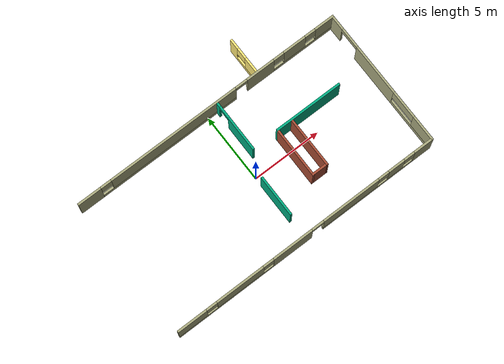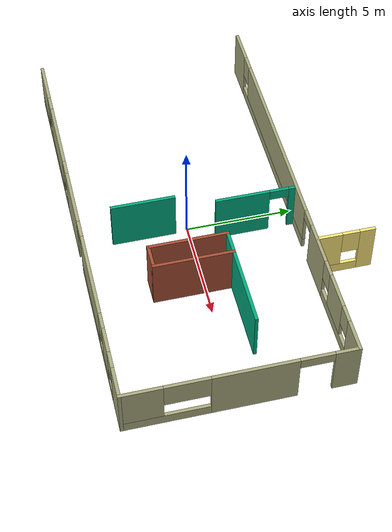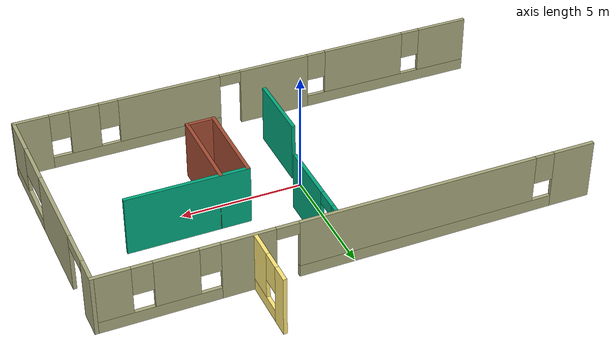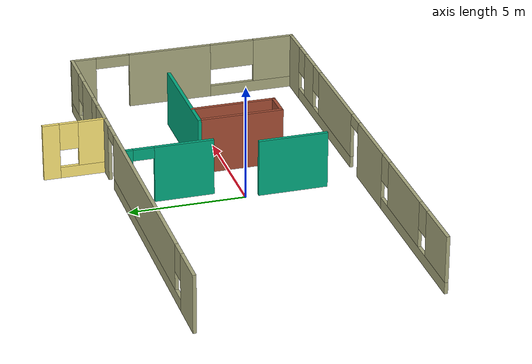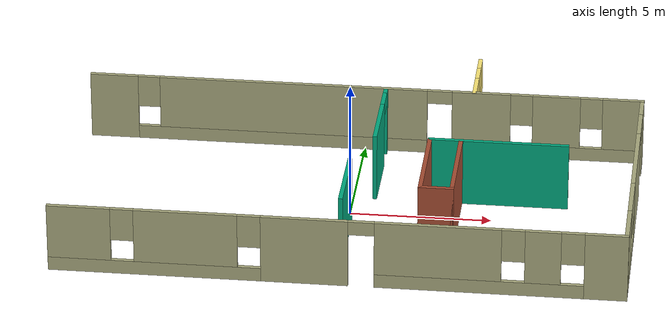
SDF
<sdf version="1.6">
 <model name="MyHouse">
  <pose>0 1.26463 0 0 -0 0</pose>
  <link name="Wall_16">
   <pose>0 3.73537 0 0 -0 0</pose>
   <visual name="Wall_16_Visual_0">
    <pose>-9.20037 0 1.25 0 -0 0</pose>
    <geometry><box><size>1.74927 0.15 2.5</size></box></geometry>
    <material>
     <script><uri>file://media/materials/scripts/gazebo.material</uri><name>Gazebo/Grey</name></script>
     <ambient>0.666667 0.666667 0.498039 1</ambient>
    </material>
    <meta><layer>0</layer></meta>
   </visual>
   <collision name="Wall_16_Collision_0">
    <geometry><box><size>1.74927 0.15 2.5</size></box></geometry>
    <pose>-9.20037 0 1.25 0 -0 0</pose>
   </collision>
   <visual name="Wall_16_Visual_1">
    <pose>4.20315 0 1.25 0 -0 0</pose>
    <geometry><box><size>2.12003 0.15 2.5</size></box></geometry>
    <material>
     <script><uri>file://media/materials/scripts/gazebo.material</uri><name>Gazebo/Grey</name></script>
     <ambient>0.666667 0.666667 0.498039 1</ambient>
    </material>
    <meta><layer>0</layer></meta>
   </visual>
   <collision name="Wall_16_Collision_1">
    <geometry><box><size>2.12003 0.15 2.5</size></box></geometry>
    <pose>4.20315 0 1.25 0 -0 0</pose>
   </collision>
   <visual name="Wall_16_Visual_2">
    <pose>-3.0413 0 0.25 0 -0 0</pose>
    <geometry><box><size>10.5689 0.15 0.5</size></box></geometry>
    <material>
     <script><uri>file://media/materials/scripts/gazebo.material</uri><name>Gazebo/Grey</name></script>
     <ambient>0.666667 0.666667 0.498039 1</ambient>
    </material>
    <meta><layer>0</layer></meta>
   </visual>
   <collision name="Wall_16_Collision_2">
    <geometry><box><size>10.5689 0.15 0.5</size></box></geometry>
    <pose>-3.0413 0 0.25 0 -0 0</pose>
   </collision>
   <visual name="Wall_16_Visual_3">
    <pose>7.66908 0 0.25 0 -0 0</pose>
    <geometry><box><size>4.81184 0.15 0.5</size></box></geometry>
    <material>
     <script><uri>file://media/materials/scripts/gazebo.material</uri><name>Gazebo/Grey</name></script>
     <ambient>0.666667 0.666667 0.498039 1</ambient>
    </material>
    <meta><layer>0</layer></meta>
   </visual>
   <collision name="Wall_16_Collision_3">
    <geometry><box><size>4.81184 0.15 0.5</size></box></geometry>
    <pose>7.66908 0 0.25 0 -0 0</pose>
   </collision>
   <visual name="Wall_16_Visual_4">
    <pose>-2.6413 0 1.5 0 -0 0</pose>
    <geometry><box><size>9.76886 0.15 2</size></box></geometry>
    <material>
     <script><uri>file://media/materials/scripts/gazebo.material</uri><name>Gazebo/Grey</name></script>
     <ambient>0.666667 0.666667 0.498039 1</ambient>
    </material>
    <meta><layer>0</layer></meta>
   </visual>
   <collision name="Wall_16_Collision_4">
    <geometry><box><size>9.76886 0.15 2</size></box></geometry>
    <pose>-2.6413 0 1.5 0 -0 0</pose>
   </collision>
   <visual name="Wall_16_Visual_5">
    <pose>-2.6413 0 1.5 0 -0 0</pose>
    <geometry><box><size>9.76886 0.15 2</size></box></geometry>
    <material>
     <script><uri>file://media/materials/scripts/gazebo.material</uri><name>Gazebo/Grey</name></script>
     <ambient>0.666667 0.666667 0.498039 1</ambient>
    </material>
    <meta><layer>0</layer></meta>
   </visual>
   <collision name="Wall_16_Collision_5">
    <geometry><box><size>9.76886 0.15 2</size></box></geometry>
    <pose>-2.6413 0 1.5 0 -0 0</pose>
   </collision>
   <visual name="Wall_16_Visual_6">
    <pose>6.9244 0 1.5 0 -0 0</pose>
    <geometry><box><size>1.72249 0.15 2</size></box></geometry>
    <material>
     <script><uri>file://media/materials/scripts/gazebo.material</uri><name>Gazebo/Grey</name></script>
     <ambient>0.666667 0.666667 0.498039 1</ambient>
    </material>
    <meta><layer>0</layer></meta>
   </visual>
   <collision name="Wall_16_Collision_6">
    <geometry><box><size>1.72249 0.15 2</size></box></geometry>
    <pose>6.9244 0 1.5 0 -0 0</pose>
   </collision>
   <visual name="Wall_16_Visual_7">
    <pose>9.33032 0 1.5 0 -0 0</pose>
    <geometry><box><size>1.48935 0.15 2</size></box></geometry>
    <material>
     <script><uri>file://media/materials/scripts/gazebo.material</uri><name>Gazebo/Grey</name></script>
     <ambient>0.666667 0.666667 0.498039 1</ambient>
    </material>
    <meta><layer>0</layer></meta>
   </visual>
   <collision name="Wall_16_Collision_7">
    <geometry><box><size>1.48935 0.15 2</size></box></geometry>
    <pose>9.33032 0 1.5 0 -0 0</pose>
   </collision>
   <visual name="Wall_16_Visual_8">
    <pose>-7.92574 0 1.9 0 -0 0</pose>
    <geometry><box><size>0.8 0.15 1.2</size></box></geometry>
    <material>
     <script><uri>file://media/materials/scripts/gazebo.material</uri><name>Gazebo/Grey</name></script>
     <ambient>0.666667 0.666667 0.498039 1</ambient>
    </material>
    <meta><layer>0</layer></meta>
   </visual>
   <collision name="Wall_16_Collision_8">
    <geometry><box><size>0.8 0.15 1.2</size></box></geometry>
    <pose>-7.92574 0 1.9 0 -0 0</pose>
   </collision>
   <visual name="Wall_16_Visual_9">
    <pose>5.66316 0 1.9 0 -0 0</pose>
    <geometry><box><size>0.8 0.15 1.2</size></box></geometry>
    <material>
     <script><uri>file://media/materials/scripts/gazebo.material</uri><name>Gazebo/Grey</name></script>
     <ambient>0.666667 0.666667 0.498039 1</ambient>
    </material>
    <meta><layer>0</layer></meta>
   </visual>
   <collision name="Wall_16_Collision_9">
    <geometry><box><size>0.8 0.15 1.2</size></box></geometry>
    <pose>5.66316 0 1.9 0 -0 0</pose>
   </collision>
   <visual name="Wall_16_Visual_10">
    <pose>8.18565 0 1.9 0 -0 0</pose>
    <geometry><box><size>0.8 0.15 1.2</size></box></geometry>
    <material>
     <script><uri>file://media/materials/scripts/gazebo.material</uri><name>Gazebo/Grey</name></script>
     <ambient>0.666667 0.666667 0.498039 1</ambient>
    </material>
    <meta><layer>0</layer></meta>
   </visual>
   <collision name="Wall_16_Collision_10">
    <geometry><box><size>0.8 0.15 1.2</size></box></geometry>
    <pose>8.18565 0 1.9 0 -0 0</pose>
   </collision>
   <visual name="Wall_16_Visual_11">
    <pose>2.69313 0 2.25 0 -0 0</pose>
    <geometry><box><size>0.9 0.15 0.5</size></box></geometry>
    <material>
     <script><uri>file://media/materials/scripts/gazebo.material</uri><name>Gazebo/Grey</name></script>
     <ambient>0.666667 0.666667 0.498039 1</ambient>
    </material>
    <meta><layer>0</layer></meta>
   </visual>
   <collision name="Wall_16_Collision_11">
    <geometry><box><size>0.9 0.15 0.5</size></box></geometry>
    <pose>2.69313 0 2.25 0 -0 0</pose>
   </collision>
   <visual name="Wall_16_Visual_12">
    <pose>2.69313 0 2.25 0 -0 0</pose>
    <geometry><box><size>0.9 0.15 0.5</size></box></geometry>
    <material>
     <script><uri>file://media/materials/scripts/gazebo.material</uri><name>Gazebo/Grey</name></script>
     <ambient>0.666667 0.666667 0.498039 1</ambient>
    </material>
    <meta><layer>0</layer></meta>
   </visual>
   <collision name="Wall_16_Collision_12">
    <geometry><box><size>0.9 0.15 0.5</size></box></geometry>
    <pose>2.69313 0 2.25 0 -0 0</pose>
   </collision>
  </link>
  <link name="Wall_27">
   <pose>10 -1.31462 0 0 0 -1.5708</pose>
   <visual name="Wall_27_Visual_0">
    <pose>-4.56171 0 1.25 0 -0 0</pose>
    <geometry><box><size>1.12659 0.15 2.5</size></box></geometry>
    <material>
     <script><uri>file://media/materials/scripts/gazebo.material</uri><name>Gazebo/Grey</name></script>
     <ambient>0.666667 0.666667 0.498039 1</ambient>
    </material>
    <meta><layer>0</layer></meta>
   </visual>
   <collision name="Wall_27_Collision_0">
    <geometry><box><size>1.12659 0.15 2.5</size></box></geometry>
    <pose>-4.56171 0 1.25 0 -0 0</pose>
   </collision>
   <visual name="Wall_27_Visual_1">
    <pose>-0.627153 0 1.25 0 -0 0</pose>
    <geometry><box><size>3.74252 0.15 2.5</size></box></geometry>
    <material>
     <script><uri>file://media/materials/scripts/gazebo.material</uri><name>Gazebo/Grey</name></script>
     <ambient>0.666667 0.666667 0.498039 1</ambient>
    </material>
    <meta><layer>0</layer></meta>
   </visual>
   <collision name="Wall_27_Collision_1">
    <geometry><box><size>3.74252 0.15 2.5</size></box></geometry>
    <pose>-0.627153 0 1.25 0 -0 0</pose>
   </collision>
   <visual name="Wall_27_Visual_2">
    <pose>3.18455 0 0.25 0 -0 0</pose>
    <geometry><box><size>3.8809 0.15 0.5</size></box></geometry>
    <material>
     <script><uri>file://media/materials/scripts/gazebo.material</uri><name>Gazebo/Grey</name></script>
     <ambient>0.666667 0.666667 0.498039 1</ambient>
    </material>
    <meta><layer>0</layer></meta>
   </visual>
   <collision name="Wall_27_Collision_2">
    <geometry><box><size>3.8809 0.15 0.5</size></box></geometry>
    <pose>3.18455 0 0.25 0 -0 0</pose>
   </collision>
   <visual name="Wall_27_Visual_3">
    <pose>4.18455 0 1.5 0 -0 0</pose>
    <geometry><box><size>1.88089 0.15 2</size></box></geometry>
    <material>
     <script><uri>file://media/materials/scripts/gazebo.material</uri><name>Gazebo/Grey</name></script>
     <ambient>0.666667 0.666667 0.498039 1</ambient>
    </material>
    <meta><layer>0</layer></meta>
   </visual>
   <collision name="Wall_27_Collision_3">
    <geometry><box><size>1.88089 0.15 2</size></box></geometry>
    <pose>4.18455 0 1.5 0 -0 0</pose>
   </collision>
   <visual name="Wall_27_Visual_4">
    <pose>2.2441 0 1.9 0 -0 0</pose>
    <geometry><box><size>2 0.15 1.2</size></box></geometry>
    <material>
     <script><uri>file://media/materials/scripts/gazebo.material</uri><name>Gazebo/Grey</name></script>
     <ambient>0.666667 0.666667 0.498039 1</ambient>
    </material>
    <meta><layer>0</layer></meta>
   </visual>
   <collision name="Wall_27_Collision_4">
    <geometry><box><size>2 0.15 1.2</size></box></geometry>
    <pose>2.2441 0 1.9 0 -0 0</pose>
   </collision>
   <visual name="Wall_27_Visual_5">
    <pose>-3.24841 0 2.25 0 -0 0</pose>
    <geometry><box><size>1.5 0.15 0.5</size></box></geometry>
    <material>
     <script><uri>file://media/materials/scripts/gazebo.material</uri><name>Gazebo/Grey</name></script>
     <ambient>0.666667 0.666667 0.498039 1</ambient>
    </material>
    <meta><layer>0</layer></meta>
   </visual>
   <collision name="Wall_27_Collision_5">
    <geometry><box><size>1.5 0.15 0.5</size></box></geometry>
    <pose>-3.24841 0 2.25 0 -0 0</pose>
   </collision>
  </link>
  <link name="Wall_28">
   <pose>0.075 -6.36463 0 0 -0 3.14159</pose>
   <visual name="Wall_28_Visual_0">
    <pose>-9.25532 0 1.25 0 -0 0</pose>
    <geometry><box><size>1.48935 0.15 2.5</size></box></geometry>
    <material>
     <script><uri>file://media/materials/scripts/gazebo.material</uri><name>Gazebo/Grey</name></script>
     <ambient>0.666667 0.666667 0.498039 1</ambient>
    </material>
    <meta><layer>0</layer></meta>
   </visual>
   <collision name="Wall_28_Collision_0">
    <geometry><box><size>1.48935 0.15 2.5</size></box></geometry>
    <pose>-9.25532 0 1.25 0 -0 0</pose>
   </collision>
   <visual name="Wall_28_Visual_1">
    <pose>1.08889 0 1.25 0 -0 0</pose>
    <geometry><box><size>3.0151 0.15 2.5</size></box></geometry>
    <material>
     <script><uri>file://media/materials/scripts/gazebo.material</uri><name>Gazebo/Grey</name></script>
     <ambient>0.666667 0.666667 0.498039 1</ambient>
    </material>
    <meta><layer>0</layer></meta>
   </visual>
   <collision name="Wall_28_Collision_1">
    <geometry><box><size>3.0151 0.15 2.5</size></box></geometry>
    <pose>1.08889 0 1.25 0 -0 0</pose>
   </collision>
   <visual name="Wall_28_Visual_2">
    <pose>-4.91465 0 0.25 0 -0 0</pose>
    <geometry><box><size>7.19198 0.15 0.5</size></box></geometry>
    <material>
     <script><uri>file://media/materials/scripts/gazebo.material</uri><name>Gazebo/Grey</name></script>
     <ambient>0.666667 0.666667 0.498039 1</ambient>
    </material>
    <meta><layer>0</layer></meta>
   </visual>
   <collision name="Wall_28_Collision_2">
    <geometry><box><size>7.19198 0.15 0.5</size></box></geometry>
    <pose>-4.91465 0 0.25 0 -0 0</pose>
   </collision>
   <visual name="Wall_28_Visual_3">
    <pose>6.29822 0 0.25 0 -0 0</pose>
    <geometry><box><size>7.40356 0.15 0.5</size></box></geometry>
    <material>
     <script><uri>file://media/materials/scripts/gazebo.material</uri><name>Gazebo/Grey</name></script>
     <ambient>0.666667 0.666667 0.498039 1</ambient>
    </material>
    <meta><layer>0</layer></meta>
   </visual>
   <collision name="Wall_28_Collision_3">
    <geometry><box><size>7.40356 0.15 0.5</size></box></geometry>
    <pose>6.29822 0 0.25 0 -0 0</pose>
   </collision>
   <visual name="Wall_28_Visual_4">
    <pose>-7.09351 0 1.5 0 -0 0</pose>
    <geometry><box><size>1.23426 0.15 2</size></box></geometry>
    <material>
     <script><uri>file://media/materials/scripts/gazebo.material</uri><name>Gazebo/Grey</name></script>
     <ambient>0.666667 0.666667 0.498039 1</ambient>
    </material>
    <meta><layer>0</layer></meta>
   </visual>
   <collision name="Wall_28_Collision_4">
    <geometry><box><size>1.23426 0.15 2</size></box></geometry>
    <pose>-7.09351 0 1.5 0 -0 0</pose>
   </collision>
   <visual name="Wall_28_Visual_5">
    <pose>-3.49752 0 1.5 0 -0 0</pose>
    <geometry><box><size>4.35772 0.15 2</size></box></geometry>
    <material>
     <script><uri>file://media/materials/scripts/gazebo.material</uri><name>Gazebo/Grey</name></script>
     <ambient>0.666667 0.666667 0.498039 1</ambient>
    </material>
    <meta><layer>0</layer></meta>
   </visual>
   <collision name="Wall_28_Collision_5">
    <geometry><box><size>4.35772 0.15 2</size></box></geometry>
    <pose>-3.49752 0 1.5 0 -0 0</pose>
   </collision>
   <visual name="Wall_28_Visual_6">
    <pose>-3.49752 0 1.5 0 -0 0</pose>
    <geometry><box><size>4.35772 0.15 2</size></box></geometry>
    <material>
     <script><uri>file://media/materials/scripts/gazebo.material</uri><name>Gazebo/Grey</name></script>
     <ambient>0.666667 0.666667 0.498039 1</ambient>
    </material>
    <meta><layer>0</layer></meta>
   </visual>
   <collision name="Wall_28_Collision_6">
    <geometry><box><size>4.35772 0.15 2</size></box></geometry>
    <pose>-3.49752 0 1.5 0 -0 0</pose>
   </collision>
   <visual name="Wall_28_Visual_7">
    <pose>5.19345 0 1.5 0 -0 0</pose>
    <geometry><box><size>3.59401 0.15 2</size></box></geometry>
    <material>
     <script><uri>file://media/materials/scripts/gazebo.material</uri><name>Gazebo/Grey</name></script>
     <ambient>0.666667 0.666667 0.498039 1</ambient>
    </material>
    <meta><layer>0</layer></meta>
   </visual>
   <collision name="Wall_28_Collision_7">
    <geometry><box><size>3.59401 0.15 2</size></box></geometry>
    <pose>5.19345 0 1.5 0 -0 0</pose>
   </collision>
   <visual name="Wall_28_Visual_8">
    <pose>8.89523 0 1.5 0 -0 0</pose>
    <geometry><box><size>2.20954 0.15 2</size></box></geometry>
    <material>
     <script><uri>file://media/materials/scripts/gazebo.material</uri><name>Gazebo/Grey</name></script>
     <ambient>0.666667 0.666667 0.498039 1</ambient>
    </material>
    <meta><layer>0</layer></meta>
   </visual>
   <collision name="Wall_28_Collision_8">
    <geometry><box><size>2.20954 0.15 2</size></box></geometry>
    <pose>8.89523 0 1.5 0 -0 0</pose>
   </collision>
   <visual name="Wall_28_Visual_9">
    <pose>-8.11065 0 1.9 0 -0 0</pose>
    <geometry><box><size>0.8 0.15 1.2</size></box></geometry>
    <material>
     <script><uri>file://media/materials/scripts/gazebo.material</uri><name>Gazebo/Grey</name></script>
     <ambient>0.666667 0.666667 0.498039 1</ambient>
    </material>
    <meta><layer>0</layer></meta>
   </visual>
   <collision name="Wall_28_Collision_9">
    <geometry><box><size>0.8 0.15 1.2</size></box></geometry>
    <pose>-8.11065 0 1.9 0 -0 0</pose>
   </collision>
   <visual name="Wall_28_Visual_10">
    <pose>2.99644 0 1.9 0 -0 0</pose>
    <geometry><box><size>0.8 0.15 1.2</size></box></geometry>
    <material>
     <script><uri>file://media/materials/scripts/gazebo.material</uri><name>Gazebo/Grey</name></script>
     <ambient>0.666667 0.666667 0.498039 1</ambient>
    </material>
    <meta><layer>0</layer></meta>
   </visual>
   <collision name="Wall_28_Collision_10">
    <geometry><box><size>0.8 0.15 1.2</size></box></geometry>
    <pose>2.99644 0 1.9 0 -0 0</pose>
   </collision>
   <visual name="Wall_28_Visual_11">
    <pose>-6.07638 0 1.9 0 -0 0</pose>
    <geometry><box><size>0.8 0.15 1.2</size></box></geometry>
    <material>
     <script><uri>file://media/materials/scripts/gazebo.material</uri><name>Gazebo/Grey</name></script>
     <ambient>0.666667 0.666667 0.498039 1</ambient>
    </material>
    <meta><layer>0</layer></meta>
   </visual>
   <collision name="Wall_28_Collision_11">
    <geometry><box><size>0.8 0.15 1.2</size></box></geometry>
    <pose>-6.07638 0 1.9 0 -0 0</pose>
   </collision>
   <visual name="Wall_28_Visual_12">
    <pose>7.39046 0 1.9 0 -0 0</pose>
    <geometry><box><size>0.8 0.15 1.2</size></box></geometry>
    <material>
     <script><uri>file://media/materials/scripts/gazebo.material</uri><name>Gazebo/Grey</name></script>
     <ambient>0.666667 0.666667 0.498039 1</ambient>
    </material>
    <meta><layer>0</layer></meta>
   </visual>
   <collision name="Wall_28_Collision_12">
    <geometry><box><size>0.8 0.15 1.2</size></box></geometry>
    <pose>7.39046 0 1.9 0 -0 0</pose>
   </collision>
   <visual name="Wall_28_Visual_13">
    <pose>-0.868663 0 2.25 0 -0 0</pose>
    <geometry><box><size>0.9 0.15 0.5</size></box></geometry>
    <material>
     <script><uri>file://media/materials/scripts/gazebo.material</uri><name>Gazebo/Grey</name></script>
     <ambient>0.666667 0.666667 0.498039 1</ambient>
    </material>
    <meta><layer>0</layer></meta>
   </visual>
   <collision name="Wall_28_Collision_13">
    <geometry><box><size>0.9 0.15 0.5</size></box></geometry>
    <pose>-0.868663 0 2.25 0 -0 0</pose>
   </collision>
   <visual name="Wall_28_Visual_14">
    <pose>-0.868663 0 2.25 0 -0 0</pose>
    <geometry><box><size>0.9 0.15 0.5</size></box></geometry>
    <material>
     <script><uri>file://media/materials/scripts/gazebo.material</uri><name>Gazebo/Grey</name></script>
     <ambient>0.666667 0.666667 0.498039 1</ambient>
    </material>
    <meta><layer>0</layer></meta>
   </visual>
   <collision name="Wall_28_Collision_14">
    <geometry><box><size>0.9 0.15 0.5</size></box></geometry>
    <pose>-0.868663 0 2.25 0 -0 0</pose>
   </collision>
  </link>
  <link name="Wall_35">
   <collision name="Wall_35_Collision">
    <geometry><box><size>3 0.15 2.5</size></box></geometry>
    <pose>0 0 1.25 0 -0 0</pose>
   </collision>
   <visual name="Wall_35_Visual">
    <pose>0 0 1.25 0 -0 0</pose>
    <geometry><box><size>3 0.15 2.5</size></box></geometry>
    <material>
     <script><uri>file://media/materials/scripts/gazebo.material</uri><name>Gazebo/Grey</name></script>
     <ambient>0 0.666667 0.498039 1</ambient>
    </material>
    <meta><layer>0</layer></meta>
   </visual>
   <pose>0.052741 -3.31563 0 0 0 -1.5708</pose>
  </link>
  <link name="Wall_41">
   <collision name="Wall_41_Collision">
    <geometry><box><size>5 0.15 2.5</size></box></geometry>
    <pose>0 0 1.25 0 -0 0</pose>
   </collision>
   <visual name="Wall_41_Visual">
    <pose>0 0 1.25 0 -0 0</pose>
    <geometry><box><size>5 0.15 2.5</size></box></geometry>
    <material>
     <script><uri>file://media/materials/scripts/gazebo.material</uri><name>Gazebo/Grey</name></script>
     <ambient>0 0.666667 0.498039 1</ambient>
    </material>
    <meta><layer>0</layer></meta>
   </visual>
   <pose>5.11813 -0.019108 0 0 -0 0</pose>
  </link>
  <link name="Wall_43">
   <collision name="Wall_43_Collision">
    <geometry><box><size>3.75 0.15 2.5</size></box></geometry>
    <pose>0 0 1.25 0 -0 0</pose>
   </collision>
   <visual name="Wall_43_Visual">
    <pose>0 0 1.25 0 -0 0</pose>
    <geometry><box><size>3.75 0.15 2.5</size></box></geometry>
    <material>
     <script><uri>file://media/materials/scripts/gazebo.material</uri><name>Gazebo/Bricks</name></script>
     <ambient>1 1 1 1</ambient>
    </material>
    <meta><layer>0</layer></meta>
   </visual>
   <pose>2.69313 -1.81911 0 0 0 -1.5708</pose>
  </link>
  <link name="Wall_44">
   <collision name="Wall_44_Collision">
    <geometry><box><size>1.25 0.15 2.5</size></box></geometry>
    <pose>0 0 1.25 0 -0 0</pose>
   </collision>
   <visual name="Wall_44_Visual">
    <pose>0 0 1.25 0 -0 0</pose>
    <geometry><box><size>1.25 0.15 2.5</size></box></geometry>
    <material>
     <script><uri>file://media/materials/scripts/gazebo.material</uri><name>Gazebo/Bricks</name></script>
     <ambient>1 1 1 1</ambient>
    </material>
    <meta><layer>0</layer></meta>
   </visual>
   <pose>3.24313 -3.61911 0 0 -0 0</pose>
  </link>
  <link name="Wall_45">
   <collision name="Wall_45_Collision">
    <geometry><box><size>3.75 0.15 2.5</size></box></geometry>
    <pose>0 0 1.25 0 -0 0</pose>
   </collision>
   <visual name="Wall_45_Visual">
    <pose>0 0 1.25 0 -0 0</pose>
    <geometry><box><size>3.75 0.15 2.5</size></box></geometry>
    <material>
     <script><uri>file://media/materials/scripts/gazebo.material</uri><name>Gazebo/Bricks</name></script>
     <ambient>1 1 1 1</ambient>
    </material>
    <meta><layer>0</layer></meta>
   </visual>
   <pose>3.79313 -1.81911 0 0 -0 1.5708</pose>
  </link>
  <link name="Wall_53">
   <pose>3.94675 5.06463 0 0 0 -1.5708</pose>
   <visual name="Wall_53_Visual_0">
    <pose>-1.01052 0 1.25 0 -0 0</pose>
    <geometry><box><size>0.728958 0.15 2.5</size></box></geometry>
    <material>
     <script><uri>file://media/materials/scripts/gazebo.material</uri><name>Gazebo/Grey</name></script>
     <ambient>1 0.913725 0.470588 1</ambient>
    </material>
    <meta><layer>0</layer></meta>
   </visual>
   <collision name="Wall_53_Collision_0">
    <geometry><box><size>0.728958 0.15 2.5</size></box></geometry>
    <pose>-1.01052 0 1.25 0 -0 0</pose>
   </collision>
   <visual name="Wall_53_Visual_1">
    <pose>0.364479 0 0.25 0 -0 0</pose>
    <geometry><box><size>2.02104 0.15 0.5</size></box></geometry>
    <material>
     <script><uri>file://media/materials/scripts/gazebo.material</uri><name>Gazebo/Grey</name></script>
     <ambient>1 0.913725 0.470588 1</ambient>
    </material>
    <meta><layer>0</layer></meta>
   </visual>
   <collision name="Wall_53_Collision_1">
    <geometry><box><size>2.02104 0.15 0.5</size></box></geometry>
    <pose>0.364479 0 0.25 0 -0 0</pose>
   </collision>
   <visual name="Wall_53_Visual_2">
    <pose>0.764479 0 1.5 0 -0 0</pose>
    <geometry><box><size>1.22104 0.15 2</size></box></geometry>
    <material>
     <script><uri>file://media/materials/scripts/gazebo.material</uri><name>Gazebo/Grey</name></script>
     <ambient>1 0.913725 0.470588 1</ambient>
    </material>
    <meta><layer>0</layer></meta>
   </visual>
   <collision name="Wall_53_Collision_2">
    <geometry><box><size>1.22104 0.15 2</size></box></geometry>
    <pose>0.764479 0 1.5 0 -0 0</pose>
   </collision>
   <visual name="Wall_53_Visual_3">
    <pose>-0.246042 0 1.9 0 -0 0</pose>
    <geometry><box><size>0.8 0.15 1.2</size></box></geometry>
    <material>
     <script><uri>file://media/materials/scripts/gazebo.material</uri><name>Gazebo/Grey</name></script>
     <ambient>1 0.913725 0.470588 1</ambient>
    </material>
    <meta><layer>0</layer></meta>
   </visual>
   <collision name="Wall_53_Collision_3">
    <geometry><box><size>0.8 0.15 1.2</size></box></geometry>
    <pose>-0.246042 0 1.9 0 -0 0</pose>
   </collision>
  </link>
  <link name="Wall_77">
   <pose>0.741213 1.78089 0 0 -0 1.5708</pose>
   <visual name="Wall_77_Visual_0">
    <pose>-0.601883 0 1.25 0 -0 0</pose>
    <geometry><box><size>2.54623 0.15 2.5</size></box></geometry>
    <material>
     <script><uri>file://media/materials/scripts/gazebo.material</uri><name>Gazebo/Grey</name></script>
     <ambient>0 0.666667 0.498039 1</ambient>
    </material>
    <meta><layer>0</layer></meta>
   </visual>
   <collision name="Wall_77_Collision_0">
    <geometry><box><size>2.54623 0.15 2.5</size></box></geometry>
    <pose>-0.601883 0 1.25 0 -0 0</pose>
   </collision>
   <visual name="Wall_77_Visual_1">
    <pose>1.72312 0 1.25 0 -0 0</pose>
    <geometry><box><size>0.303767 0.15 2.5</size></box></geometry>
    <material>
     <script><uri>file://media/materials/scripts/gazebo.material</uri><name>Gazebo/Grey</name></script>
     <ambient>0 0.666667 0.498039 1</ambient>
    </material>
    <meta><layer>0</layer></meta>
   </visual>
   <collision name="Wall_77_Collision_1">
    <geometry><box><size>0.303767 0.15 2.5</size></box></geometry>
    <pose>1.72312 0 1.25 0 -0 0</pose>
   </collision>
   <visual name="Wall_77_Visual_2">
    <pose>1.12123 0 2.25 0 -0 0</pose>
    <geometry><box><size>0.9 0.15 0.5</size></box></geometry>
    <material>
     <script><uri>file://media/materials/scripts/gazebo.material</uri><name>Gazebo/Grey</name></script>
     <ambient>0 0.666667 0.498039 1</ambient>
    </material>
    <meta><layer>0</layer></meta>
   </visual>
   <collision name="Wall_77_Collision_2">
    <geometry><box><size>0.9 0.15 0.5</size></box></geometry>
    <pose>1.12123 0 2.25 0 -0 0</pose>
   </collision>
  </link>
  <static>1</static>
 </model>
</sdf>
